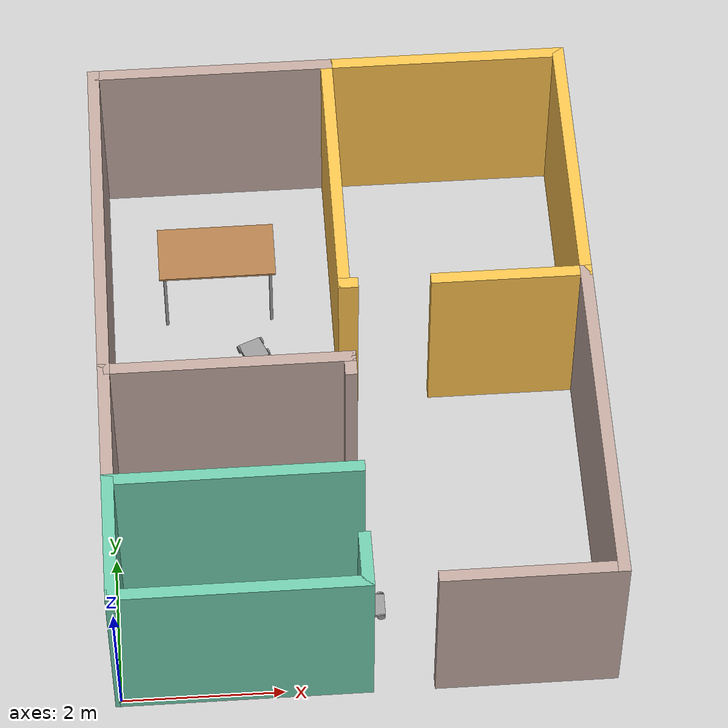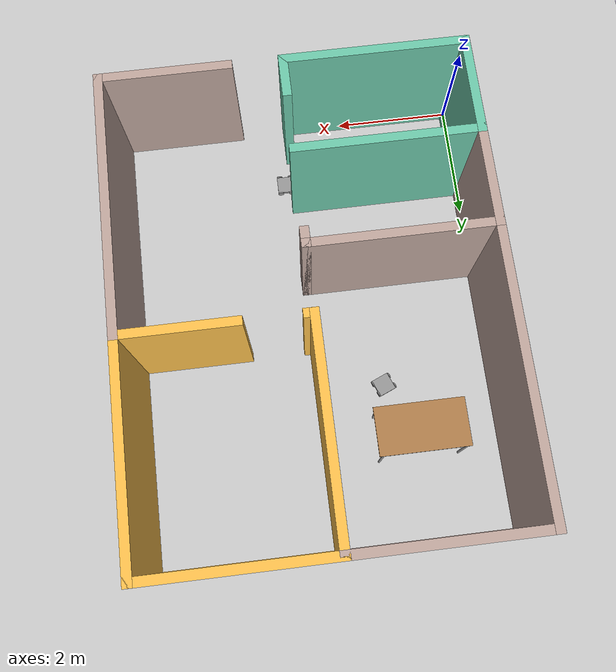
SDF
<sdf version="1.6">
 <world name="default">
  <plugin name="welcome_message" filename="libwelcome_message.so"/>
  <light name="sun" type="directional">
   <pose>0 0 10 0 -0 0</pose>
   <diffuse>0.8 0.8 0.8 1</diffuse>
   <specular>0.2 0.2 0.2 1</specular>
   <attenuation>
    <range>1000</range>
    <constant>0.9</constant>
    <linear>0.01</linear>
    <quadratic>0.001</quadratic>
   </attenuation>
   <direction>-0.5 0.1 -0.9</direction>
  </light>
  <model name="ground_plane">
   <static>1</static>
   <link name="link">
    <collision name="collision">
     <geometry><plane><normal>0 0 1</normal><size>100 100</size></plane></geometry>
     <surface>
      <contact><collide_bitmask>65535</collide_bitmask></contact>
      <friction><ode><mu>100</mu><mu2>50</mu2></ode></friction>
     </surface>
    </collision>
    <visual name="visual">
     <cast_shadows>0</cast_shadows>
     <geometry><plane><normal>0 0 1</normal><size>100 100</size></plane></geometry>
     <material>
      <script><uri>file://media/materials/scripts/gazebo.material</uri><name>Gazebo/Grey</name></script>
     </material>
    </visual>
   </link>
  </model>
  <gravity>0 0 -9.8</gravity>
  <magnetic_field>6e-06 2.3e-05 -4.2e-05</magnetic_field>
  <atmosphere type="adiabatic"/>
  <physics name="default_physics" default="0" type="ode">
   <max_step_size>0.001</max_step_size>
   <real_time_factor>1</real_time_factor>
   <real_time_update_rate>1000</real_time_update_rate>
  </physics>
  <scene><ambient>0.4 0.4 0.4 1</ambient><background>0.7 0.7 0.7 1</background><shadows>1</shadows></scene>
  <spherical_coordinates>
   <surface_model>EARTH_WGS84</surface_model>
   <latitude_deg>0</latitude_deg>
   <longitude_deg>0</longitude_deg>
   <elevation>0</elevation>
   <heading_deg>0</heading_deg>
  </spherical_coordinates>
  <model name="Building">
   <pose>3 3.9 0 0 -0 0</pose>
   <link name="Wall_0">
    <collision name="Wall_0_Collision">
     <geometry><box><size>3.15 0.15 2.5</size></box></geometry>
     <pose>0 0 1.25 0 -0 0</pose>
    </collision>
    <visual name="Wall_0_Visual">
     <pose>0 0 1.25 0 -0 0</pose>
     <geometry><box><size>3.15 0.15 2.5</size></box></geometry>
     <material>
      <script><uri>file://media/materials/scripts/gazebo.material</uri><name>Gazebo/Grey</name></script>
      <ambient>0.435294 0.796078 0.67451 1</ambient>
     </material>
     <meta><layer>0</layer></meta>
    </visual>
    <pose>-1.5 -3.9 0 0 -0 0</pose>
   </link>
   <link name="Wall_11">
    <collision name="Wall_11_Collision">
     <geometry><box><size>4.75 0.15 2.5</size></box></geometry>
     <pose>0 0 1.25 0 -0 0</pose>
    </collision>
    <visual name="Wall_11_Visual">
     <pose>0 0 1.25 0 -0 0</pose>
     <geometry><box><size>4.75 0.15 2.5</size></box></geometry>
     <material>
      <script><uri>file://media/materials/scripts/gazebo.material</uri><name>Gazebo/Grey</name></script>
      <ambient>0.760784 0.662745 0.627451 1</ambient>
     </material>
     <meta><layer>0</layer></meta>
    </visual>
    <pose>-3 1.6 0 0 -0 1.5708</pose>
   </link>
   <link name="Wall_13">
    <collision name="Wall_13_Collision">
     <geometry><box><size>3.15 0.15 2.5</size></box></geometry>
     <pose>0 0 1.25 0 -0 0</pose>
    </collision>
    <visual name="Wall_13_Visual">
     <pose>0 0 1.25 0 -0 0</pose>
     <geometry><box><size>3.15 0.15 2.5</size></box></geometry>
     <material>
      <script><uri>file://media/materials/scripts/gazebo.material</uri><name>Gazebo/Grey</name></script>
      <ambient>0.760784 0.662745 0.627451 1</ambient>
     </material>
     <meta><layer>0</layer></meta>
    </visual>
    <pose>-1.5 3.9 0 0 -0 0</pose>
   </link>
   <link name="Wall_15">
    <collision name="Wall_15_Collision">
     <geometry><box><size>3.65 0.15 2.5</size></box></geometry>
     <pose>0 0 1.25 0 -0 0</pose>
    </collision>
    <visual name="Wall_15_Visual">
     <pose>0 0 1.25 0 -0 0</pose>
     <geometry><box><size>3.65 0.15 2.5</size></box></geometry>
     <material>
      <script><uri>file://media/materials/scripts/gazebo.material</uri><name>Gazebo/Grey</name></script>
      <ambient>1 0.764706 0.305882 1</ambient>
     </material>
     <meta><layer>0</layer></meta>
    </visual>
    <pose>0 2.15 0 0 -0 -1.5708</pose>
   </link>
   <link name="Wall_17">
    <collision name="Wall_17_Collision">
     <geometry><box><size>3.15 0.15 2.5</size></box></geometry>
     <pose>0 0 1.25 0 -0 0</pose>
    </collision>
    <visual name="Wall_17_Visual">
     <pose>0 0 1.25 0 -0 0</pose>
     <geometry><box><size>3.15 0.15 2.5</size></box></geometry>
     <material>
      <script><uri>file://media/materials/scripts/gazebo.material</uri><name>Gazebo/Grey</name></script>
      <ambient>1 0.764706 0.305882 1</ambient>
     </material>
     <meta><layer>0</layer></meta>
    </visual>
    <pose>1.5 3.9 0 0 -0 0</pose>
   </link>
   <link name="Wall_19">
    <collision name="Wall_19_Collision">
     <geometry><box><size>3.65 0.15 2.5</size></box></geometry>
     <pose>0 0 1.25 0 -0 0</pose>
    </collision>
    <visual name="Wall_19_Visual">
     <pose>0 0 1.25 0 -0 0</pose>
     <geometry><box><size>3.65 0.15 2.5</size></box></geometry>
     <material>
      <script><uri>file://media/materials/scripts/gazebo.material</uri><name>Gazebo/Grey</name></script>
      <ambient>1 0.764706 0.305882 1</ambient>
     </material>
     <meta><layer>0</layer></meta>
    </visual>
    <pose>3 2.15 0 0 -0 -1.5708</pose>
   </link>
   <link name="Wall_2">
    <collision name="Wall_2_Collision">
     <geometry><box><size>1.75 0.15 2.5</size></box></geometry>
     <pose>0 0 1.25 0 -0 0</pose>
    </collision>
    <visual name="Wall_2_Visual">
     <pose>0 0 1.25 0 -0 0</pose>
     <geometry><box><size>1.75 0.15 2.5</size></box></geometry>
     <material>
      <script><uri>file://media/materials/scripts/gazebo.material</uri><name>Gazebo/Grey</name></script>
      <ambient>0.435294 0.796078 0.67451 1</ambient>
     </material>
     <meta><layer>0</layer></meta>
    </visual>
    <pose>-3 -3.1 0 0 -0 1.5708</pose>
   </link>
   <link name="Wall_23">
    <collision name="Wall_23_Collision">
     <geometry><box><size>2 0.15 2.5</size></box></geometry>
     <pose>0 0 1.25 0 -0 0</pose>
    </collision>
    <visual name="Wall_23_Visual">
     <pose>0 0 1.25 0 -0 0</pose>
     <geometry><box><size>2 0.15 2.5</size></box></geometry>
     <material>
      <script><uri>file://media/materials/scripts/gazebo.material</uri><name>Gazebo/Grey</name></script>
      <ambient>1 0.764706 0.305882 1</ambient>
     </material>
     <meta><layer>0</layer></meta>
    </visual>
    <pose>2.075 0.4 0 0 -0 3.14159</pose>
   </link>
   <link name="Wall_25">
    <collision name="Wall_25_Collision">
     <geometry><box><size>4.45 0.15 2.5</size></box></geometry>
     <pose>0 0 1.25 0 -0 0</pose>
    </collision>
    <visual name="Wall_25_Visual">
     <pose>0 0 1.25 0 -0 0</pose>
     <geometry><box><size>4.45 0.15 2.5</size></box></geometry>
     <material>
      <script><uri>file://media/materials/scripts/gazebo.material</uri><name>Gazebo/Grey</name></script>
      <ambient>0.760784 0.662745 0.627451 1</ambient>
     </material>
     <meta><layer>0</layer></meta>
    </visual>
    <pose>3 -1.75 0 0 -0 -1.5708</pose>
   </link>
   <link name="Wall_28">
    <collision name="Wall_28_Collision">
     <geometry><box><size>0.75 0.15 2.5</size></box></geometry>
     <pose>0 0 1.25 0 -0 0</pose>
    </collision>
    <visual name="Wall_28_Visual">
     <pose>0 0 1.25 0 -0 0</pose>
     <geometry><box><size>0.75 0.15 2.5</size></box></geometry>
     <material>
      <script><uri>file://media/materials/scripts/gazebo.material</uri><name>Gazebo/Grey</name></script>
      <ambient>0.435294 0.796078 0.67451 1</ambient>
     </material>
     <meta><layer>0</layer></meta>
    </visual>
    <pose>0 -3.6 0 0 -0 1.5708</pose>
   </link>
   <link name="Wall_30">
    <collision name="Wall_30_Collision">
     <geometry><box><size>2.25 0.15 2.5</size></box></geometry>
     <pose>0 0 1.25 0 -0 0</pose>
    </collision>
    <visual name="Wall_30_Visual">
     <pose>0 0 1.25 0 -0 0</pose>
     <geometry><box><size>2.25 0.15 2.5</size></box></geometry>
     <material>
      <script><uri>file://media/materials/scripts/gazebo.material</uri><name>Gazebo/Grey</name></script>
      <ambient>0.760784 0.662745 0.627451 1</ambient>
     </material>
     <meta><layer>0</layer></meta>
    </visual>
    <pose>1.95 -3.9 0 0 -0 3.14159</pose>
   </link>
   <link name="Wall_32">
    <collision name="Wall_32_Collision">
     <geometry><box><size>0.25 0.15 2.5</size></box></geometry>
     <pose>0 0 1.25 0 -0 0</pose>
    </collision>
    <visual name="Wall_32_Visual">
     <pose>0 0 1.25 0 -0 0</pose>
     <geometry><box><size>0.25 0.15 2.5</size></box></geometry>
     <material>
      <script><uri>file://media/materials/scripts/gazebo.material</uri><name>Gazebo/Grey</name></script>
      <ambient>1 0.764706 0.305882 1</ambient>
     </material>
     <meta><layer>0</layer></meta>
    </visual>
    <pose>0.05 0.4 0 0 -0 0</pose>
   </link>
   <link name="Wall_34">
    <collision name="Wall_34_Collision">
     <geometry><box><size>0.15 0.15 2.5</size></box></geometry>
     <pose>0 0 1.25 0 -0 0</pose>
    </collision>
    <visual name="Wall_34_Visual">
     <pose>0 0 1.25 0 -0 0</pose>
     <geometry><box><size>0.15 0.15 2.5</size></box></geometry>
     <material>
      <script><uri>file://media/materials/scripts/gazebo.material</uri><name>Gazebo/Grey</name></script>
      <ambient>0.760784 0.662745 0.627451 1</ambient>
     </material>
     <meta><layer>0</layer></meta>
    </visual>
    <pose>0 -0.7 0 0 -0 0</pose>
   </link>
   <link name="Wall_37">
    <collision name="Wall_37_Collision">
     <geometry><box><size>0.35 0.15 2.5</size></box></geometry>
     <pose>0 0 1.25 0 -0 0</pose>
    </collision>
    <visual name="Wall_37_Visual">
     <pose>0 0 1.25 0 -0 0</pose>
     <geometry><box><size>0.35 0.15 2.5</size></box></geometry>
     <material>
      <script><uri>file://media/materials/scripts/gazebo.material</uri><name>Gazebo/Grey</name></script>
      <ambient>0.760784 0.662745 0.627451 1</ambient>
     </material>
     <meta><layer>0</layer></meta>
    </visual>
    <pose>0 -0.8 0 0 -0 1.5708</pose>
   </link>
   <link name="Wall_4">
    <collision name="Wall_4_Collision">
     <geometry><box><size>3.15 0.15 2.5</size></box></geometry>
     <pose>0 0 1.25 0 -0 0</pose>
    </collision>
    <visual name="Wall_4_Visual">
     <pose>0 0 1.25 0 -0 0</pose>
     <geometry><box><size>3.15 0.15 2.5</size></box></geometry>
     <material>
      <script><uri>file://media/materials/scripts/gazebo.material</uri><name>Gazebo/Grey</name></script>
      <ambient>0.435294 0.796078 0.67451 1</ambient>
     </material>
     <meta><layer>0</layer></meta>
    </visual>
    <pose>-1.5 -2.3 0 0 -0 0</pose>
   </link>
   <link name="Wall_6">
    <collision name="Wall_6_Collision">
     <geometry><box><size>1.75 0.15 2.5</size></box></geometry>
     <pose>0 0 1.25 0 -0 0</pose>
    </collision>
    <visual name="Wall_6_Visual">
     <pose>0 0 1.25 0 -0 0</pose>
     <geometry><box><size>1.75 0.15 2.5</size></box></geometry>
     <material>
      <script><uri>file://media/materials/scripts/gazebo.material</uri><name>Gazebo/Grey</name></script>
      <ambient>0.760784 0.662745 0.627451 1</ambient>
     </material>
     <meta><layer>0</layer></meta>
    </visual>
    <pose>-3 -1.5 0 0 -0 1.5708</pose>
   </link>
   <link name="Wall_8">
    <collision name="Wall_8_Collision">
     <geometry><box><size>3.15 0.15 2.5</size></box></geometry>
     <pose>0 0 1.25 0 -0 0</pose>
    </collision>
    <visual name="Wall_8_Visual">
     <pose>0 0 1.25 0 -0 0</pose>
     <geometry><box><size>3.15 0.15 2.5</size></box></geometry>
     <material>
      <script><uri>file://media/materials/scripts/gazebo.material</uri><name>Gazebo/Grey</name></script>
      <ambient>0.760784 0.662745 0.627451 1</ambient>
     </material>
     <meta><layer>0</layer></meta>
    </visual>
    <pose>-1.5 -0.7 0 0 -0 0</pose>
   </link>
   <static>1</static>
  </model>
  <model name="table">
   <static>1</static>
   <link name="link">
    <collision name="surface">
     <pose>0 0 1 0 -0 0</pose>
     <geometry><box><size>1.5 0.8 0.03</size></box></geometry>
     <surface><friction><ode><mu>0.6</mu><mu2>0.6</mu2></ode></friction></surface>
    </collision>
    <visual name="visual1">
     <pose>0 0 1 0 -0 0</pose>
     <geometry><box><size>1.5 0.8 0.03</size></box></geometry>
     <material>
      <script><uri>file://media/materials/scripts/gazebo.material</uri><name>Gazebo/Wood</name></script>
     </material>
    </visual>
    <collision name="front_left_leg">
     <pose>0.68 0.38 0.5 0 -0 0</pose>
     <geometry><cylinder><radius>0.02</radius><length>1</length></cylinder></geometry>
    </collision>
    <visual name="front_left_leg">
     <pose>0.68 0.38 0.5 0 -0 0</pose>
     <geometry><cylinder><radius>0.02</radius><length>1</length></cylinder></geometry>
     <material>
      <script><uri>file://media/materials/scripts/gazebo.material</uri><name>Gazebo/Grey</name></script>
     </material>
    </visual>
    <collision name="front_right_leg">
     <pose>0.68 -0.38 0.5 0 -0 0</pose>
     <geometry><cylinder><radius>0.02</radius><length>1</length></cylinder></geometry>
    </collision>
    <visual name="front_right_leg">
     <pose>0.68 -0.38 0.5 0 -0 0</pose>
     <geometry><cylinder><radius>0.02</radius><length>1</length></cylinder></geometry>
     <material>
      <script><uri>file://media/materials/scripts/gazebo.material</uri><name>Gazebo/Grey</name></script>
     </material>
    </visual>
    <collision name="back_right_leg">
     <pose>-0.68 -0.38 0.5 0 -0 0</pose>
     <geometry><cylinder><radius>0.02</radius><length>1</length></cylinder></geometry>
    </collision>
    <visual name="back_right_leg">
     <pose>-0.68 -0.38 0.5 0 -0 0</pose>
     <geometry><cylinder><radius>0.02</radius><length>1</length></cylinder></geometry>
     <material>
      <script><uri>file://media/materials/scripts/gazebo.material</uri><name>Gazebo/Grey</name></script>
     </material>
    </visual>
    <collision name="back_left_leg">
     <pose>-0.68 0.38 0.5 0 -0 0</pose>
     <geometry><cylinder><radius>0.02</radius><length>1</length></cylinder></geometry>
    </collision>
    <visual name="back_left_leg">
     <pose>-0.68 0.38 0.5 0 -0 0</pose>
     <geometry><cylinder><radius>0.02</radius><length>1</length></cylinder></geometry>
     <material>
      <script><uri>file://media/materials/scripts/gazebo.material</uri><name>Gazebo/Grey</name></script>
     </material>
    </visual>
   </link>
   <pose>1.4556 5.98783 0 0 -0 0</pose>
  </model>
  <model name="HumanoidRobot_0">
   <link name="link_0">
    <inertial>
     <mass>1</mass>
     <inertia>
      <ixx>0.166667</ixx>
      <ixy>0</ixy>
      <ixz>0</ixz>
      <iyy>0.166667</iyy>
      <iyz>0</iyz>
      <izz>0.166667</izz>
     </inertia>
    </inertial>
    <visual name="visual">
     <geometry><box><size>0.3 0.3 0.05</size></box></geometry>
     <material>
      <lighting>1</lighting>
      <script><uri>file://media/materials/scripts/gazebo.material</uri><name>Gazebo/Grey</name></script>
      <shader type="pixel"><normal_map>__default__</normal_map></shader>
      <ambient>0.3 0.3 0.3 1</ambient>
      <diffuse>0.7 0.7 0.7 1</diffuse>
      <specular>0.01 0.01 0.01 1</specular>
      <emissive>0 0 0 1</emissive>
     </material>
    </visual>
    <collision name="collision">
     <geometry><box><size>0.3 0.3 0.05</size></box></geometry>
     <surface>
      <friction>
       <ode><mu>1</mu><mu2>1</mu2><fdir1>0 0 0</fdir1><slip1>0</slip1><slip2>0</slip2></ode>
       <torsional>
        <coefficient>1</coefficient>
        <patch_radius>0</patch_radius>
        <surface_radius>0</surface_radius>
        <use_patch_radius>1</use_patch_radius>
        <ode><slip>0</slip></ode>
       </torsional>
      </friction>
      <bounce><restitution_coefficient>0</restitution_coefficient><threshold>1e+06</threshold></bounce>
      <contact>
       <collide_without_contact>0</collide_without_contact>
       <collide_without_contact_bitmask>1</collide_without_contact_bitmask>
       <collide_bitmask>1</collide_bitmask>
       <ode>
        <soft_cfm>0</soft_cfm>
        <soft_erp>0.2</soft_erp>
        <kp>1e+13</kp>
        <kd>1</kd>
        <max_vel>0.01</max_vel>
        <min_depth>0</min_depth>
       </ode>
       <bullet>
        <split_impulse>1</split_impulse>
        <split_impulse_penetration_threshold>-0.01</split_impulse_penetration_threshold>
        <soft_cfm>0</soft_cfm>
        <soft_erp>0.2</soft_erp>
        <kp>1e+13</kp>
        <kd>1</kd>
       </bullet>
      </contact>
     </surface>
    </collision>
   </link>
   <link name="link_1_clone_clone_clone">
    <inertial>
     <mass>1</mass>
     <inertia><ixx>0.145833</ixx><ixy>0</ixy><ixz>0</ixz><iyy>0.145833</iyy><iyz>0</iyz><izz>0.125</izz></inertia>
    </inertial>
    <pose>-0.1 -0.160005 0 1.5707 -0 0</pose>
    <visual name="visual">
     <geometry><cylinder><radius>0.05</radius><length>0.02</length></cylinder></geometry>
     <material>
      <lighting>1</lighting>
      <script><uri>file://media/materials/scripts/gazebo.material</uri><name>Gazebo/Grey</name></script>
      <shader type="pixel"><normal_map>__default__</normal_map></shader>
      <ambient>0.3 0.3 0.3 1</ambient>
      <diffuse>0.7 0.7 0.7 1</diffuse>
      <specular>0.01 0.01 0.01 1</specular>
      <emissive>0 0 0 1</emissive>
     </material>
    </visual>
    <collision name="collision">
     <geometry><cylinder><radius>0.05</radius><length>0.02</length></cylinder></geometry>
     <surface>
      <friction>
       <ode><mu>1</mu><mu2>1</mu2><fdir1>0 0 0</fdir1><slip1>0</slip1><slip2>0</slip2></ode>
       <torsional>
        <coefficient>1</coefficient>
        <patch_radius>0</patch_radius>
        <surface_radius>0</surface_radius>
        <use_patch_radius>1</use_patch_radius>
        <ode><slip>0</slip></ode>
       </torsional>
      </friction>
      <bounce><restitution_coefficient>0</restitution_coefficient><threshold>1e+06</threshold></bounce>
      <contact>
       <collide_without_contact>0</collide_without_contact>
       <collide_without_contact_bitmask>1</collide_without_contact_bitmask>
       <collide_bitmask>1</collide_bitmask>
       <ode>
        <soft_cfm>0</soft_cfm>
        <soft_erp>0.2</soft_erp>
        <kp>1e+13</kp>
        <kd>1</kd>
        <max_vel>0.01</max_vel>
        <min_depth>0</min_depth>
       </ode>
       <bullet>
        <split_impulse>1</split_impulse>
        <split_impulse_penetration_threshold>-0.01</split_impulse_penetration_threshold>
        <soft_cfm>0</soft_cfm>
        <soft_erp>0.2</soft_erp>
        <kp>1e+13</kp>
        <kd>1</kd>
       </bullet>
      </contact>
     </surface>
    </collision>
   </link>
   <link name="link_1_clone_clone_clone_clone">
    <inertial>
     <mass>1</mass>
     <inertia><ixx>0.145833</ixx><ixy>0</ixy><ixz>0</ixz><iyy>0.145833</iyy><iyz>0</iyz><izz>0.125</izz></inertia>
    </inertial>
    <pose>0.1 -0.160005 0 1.5707 -0 0</pose>
    <visual name="visual">
     <geometry><cylinder><radius>0.05</radius><length>0.02</length></cylinder></geometry>
     <material>
      <lighting>1</lighting>
      <script><uri>file://media/materials/scripts/gazebo.material</uri><name>Gazebo/Grey</name></script>
      <shader type="pixel"><normal_map>__default__</normal_map></shader>
      <ambient>0.3 0.3 0.3 1</ambient>
      <diffuse>0.7 0.7 0.7 1</diffuse>
      <specular>0.01 0.01 0.01 1</specular>
      <emissive>0 0 0 1</emissive>
     </material>
    </visual>
    <collision name="collision">
     <geometry><cylinder><radius>0.05</radius><length>0.02</length></cylinder></geometry>
     <surface>
      <friction>
       <ode><mu>1</mu><mu2>1</mu2><fdir1>0 0 0</fdir1><slip1>0</slip1><slip2>0</slip2></ode>
       <torsional>
        <coefficient>1</coefficient>
        <patch_radius>0</patch_radius>
        <surface_radius>0</surface_radius>
        <use_patch_radius>1</use_patch_radius>
        <ode><slip>0</slip></ode>
       </torsional>
      </friction>
      <bounce><restitution_coefficient>0</restitution_coefficient><threshold>1e+06</threshold></bounce>
      <contact>
       <collide_without_contact>0</collide_without_contact>
       <collide_without_contact_bitmask>1</collide_without_contact_bitmask>
       <collide_bitmask>1</collide_bitmask>
       <ode>
        <soft_cfm>0</soft_cfm>
        <soft_erp>0.2</soft_erp>
        <kp>1e+13</kp>
        <kd>1</kd>
        <max_vel>0.01</max_vel>
        <min_depth>0</min_depth>
       </ode>
       <bullet>
        <split_impulse>1</split_impulse>
        <split_impulse_penetration_threshold>-0.01</split_impulse_penetration_threshold>
        <soft_cfm>0</soft_cfm>
        <soft_erp>0.2</soft_erp>
        <kp>1e+13</kp>
        <kd>1</kd>
       </bullet>
      </contact>
     </surface>
    </collision>
   </link>
   <link name="link_1_clone_clone_clone_clone_0">
    <inertial>
     <mass>1</mass>
     <inertia><ixx>0.145833</ixx><ixy>0</ixy><ixz>0</ixz><iyy>0.145833</iyy><iyz>0</iyz><izz>0.125</izz></inertia>
    </inertial>
    <pose>-0.1 0.160005 0 1.5707 -0 0</pose>
    <visual name="visual">
     <geometry><cylinder><radius>0.05</radius><length>0.02</length></cylinder></geometry>
     <material>
      <lighting>1</lighting>
      <script><uri>file://media/materials/scripts/gazebo.material</uri><name>Gazebo/Grey</name></script>
      <shader type="pixel"><normal_map>__default__</normal_map></shader>
      <ambient>0.3 0.3 0.3 1</ambient>
      <diffuse>0.7 0.7 0.7 1</diffuse>
      <specular>0.01 0.01 0.01 1</specular>
      <emissive>0 0 0 1</emissive>
     </material>
    </visual>
    <collision name="collision">
     <geometry><cylinder><radius>0.05</radius><length>0.02</length></cylinder></geometry>
     <surface>
      <friction>
       <ode><mu>1</mu><mu2>1</mu2><fdir1>0 0 0</fdir1><slip1>0</slip1><slip2>0</slip2></ode>
       <torsional>
        <coefficient>1</coefficient>
        <patch_radius>0</patch_radius>
        <surface_radius>0</surface_radius>
        <use_patch_radius>1</use_patch_radius>
        <ode><slip>0</slip></ode>
       </torsional>
      </friction>
      <bounce><restitution_coefficient>0</restitution_coefficient><threshold>1e+06</threshold></bounce>
      <contact>
       <collide_without_contact>0</collide_without_contact>
       <collide_without_contact_bitmask>1</collide_without_contact_bitmask>
       <collide_bitmask>1</collide_bitmask>
       <ode>
        <soft_cfm>0</soft_cfm>
        <soft_erp>0.2</soft_erp>
        <kp>1e+13</kp>
        <kd>1</kd>
        <max_vel>0.01</max_vel>
        <min_depth>0</min_depth>
       </ode>
       <bullet>
        <split_impulse>1</split_impulse>
        <split_impulse_penetration_threshold>-0.01</split_impulse_penetration_threshold>
        <soft_cfm>0</soft_cfm>
        <soft_erp>0.2</soft_erp>
        <kp>1e+13</kp>
        <kd>1</kd>
       </bullet>
      </contact>
     </surface>
    </collision>
   </link>
   <link name="link_1_clone_clone_clone_clone_1">
    <inertial>
     <mass>1</mass>
     <inertia><ixx>0.145833</ixx><ixy>0</ixy><ixz>0</ixz><iyy>0.145833</iyy><iyz>0</iyz><izz>0.125</izz></inertia>
    </inertial>
    <pose>0.1 0.160005 0 1.5707 -0 0</pose>
    <visual name="visual">
     <geometry><cylinder><radius>0.05</radius><length>0.02</length></cylinder></geometry>
     <material>
      <lighting>1</lighting>
      <script><uri>file://media/materials/scripts/gazebo.material</uri><name>Gazebo/Grey</name></script>
      <shader type="pixel"><normal_map>__default__</normal_map></shader>
      <ambient>0.3 0.3 0.3 1</ambient>
      <diffuse>0.7 0.7 0.7 1</diffuse>
      <specular>0.01 0.01 0.01 1</specular>
      <emissive>0 0 0 1</emissive>
     </material>
    </visual>
    <collision name="collision">
     <geometry><cylinder><radius>0.05</radius><length>0.02</length></cylinder></geometry>
     <surface>
      <friction>
       <ode><mu>1</mu><mu2>1</mu2><fdir1>0 0 0</fdir1><slip1>0</slip1><slip2>0</slip2></ode>
       <torsional>
        <coefficient>1</coefficient>
        <patch_radius>0</patch_radius>
        <surface_radius>0</surface_radius>
        <use_patch_radius>1</use_patch_radius>
        <ode><slip>0</slip></ode>
       </torsional>
      </friction>
      <bounce><restitution_coefficient>0</restitution_coefficient><threshold>1e+06</threshold></bounce>
      <contact>
       <collide_without_contact>0</collide_without_contact>
       <collide_without_contact_bitmask>1</collide_without_contact_bitmask>
       <collide_bitmask>1</collide_bitmask>
       <ode>
        <soft_cfm>0</soft_cfm>
        <soft_erp>0.2</soft_erp>
        <kp>1e+13</kp>
        <kd>1</kd>
        <max_vel>0.01</max_vel>
        <min_depth>0</min_depth>
       </ode>
       <bullet>
        <split_impulse>1</split_impulse>
        <split_impulse_penetration_threshold>-0.01</split_impulse_penetration_threshold>
        <soft_cfm>0</soft_cfm>
        <soft_erp>0.2</soft_erp>
        <kp>1e+13</kp>
        <kd>1</kd>
       </bullet>
      </contact>
     </surface>
    </collision>
   </link>
   <joint name="link_0_JOINT_3" type="revolute">
    <parent>link_0</parent>
    <child>link_1_clone_clone_clone</child>
    <axis>
     <xyz>1 0 0</xyz>
     <use_parent_model_frame>0</use_parent_model_frame>
     <limit>
      <lower>-1.79769e+308</lower>
      <upper>1.79769e+308</upper>
      <effort>-1</effort>
      <velocity>-1</velocity>
     </limit>
     <dynamics>
      <spring_reference>0</spring_reference>
      <spring_stiffness>0</spring_stiffness>
      <damping>0</damping>
     </dynamics>
    </axis>
    <physics>
     <ode><limit><cfm>0</cfm><erp>0.2</erp></limit><suspension><cfm>0</cfm><erp>0.2</erp></suspension></ode>
    </physics>
   </joint>
   <joint name="link_0_JOINT_4" type="revolute">
    <parent>link_0</parent>
    <child>link_1_clone_clone_clone_clone</child>
    <axis>
     <xyz>1 0 0</xyz>
     <use_parent_model_frame>0</use_parent_model_frame>
     <limit>
      <lower>-1.79769e+308</lower>
      <upper>1.79769e+308</upper>
      <effort>-1</effort>
      <velocity>-1</velocity>
     </limit>
     <dynamics>
      <spring_reference>0</spring_reference>
      <spring_stiffness>0</spring_stiffness>
      <damping>0</damping>
     </dynamics>
    </axis>
    <physics>
     <ode><limit><cfm>0</cfm><erp>0.2</erp></limit><suspension><cfm>0</cfm><erp>0.2</erp></suspension></ode>
    </physics>
   </joint>
   <joint name="link_0_JOINT_5" type="revolute">
    <parent>link_0</parent>
    <child>link_1_clone_clone_clone_clone_0</child>
    <axis>
     <xyz>1 0 0</xyz>
     <use_parent_model_frame>0</use_parent_model_frame>
     <limit>
      <lower>-1.79769e+308</lower>
      <upper>1.79769e+308</upper>
      <effort>-1</effort>
      <velocity>-1</velocity>
     </limit>
     <dynamics>
      <spring_reference>0</spring_reference>
      <spring_stiffness>0</spring_stiffness>
      <damping>0</damping>
     </dynamics>
    </axis>
    <physics>
     <ode><limit><cfm>0</cfm><erp>0.2</erp></limit><suspension><cfm>0</cfm><erp>0.2</erp></suspension></ode>
    </physics>
   </joint>
   <joint name="link_0_JOINT_6" type="revolute">
    <parent>link_0</parent>
    <child>link_1_clone_clone_clone_clone_1</child>
    <axis>
     <xyz>1 0 0</xyz>
     <use_parent_model_frame>0</use_parent_model_frame>
     <limit>
      <lower>-1.79769e+308</lower>
      <upper>1.79769e+308</upper>
      <effort>-1</effort>
      <velocity>-1</velocity>
     </limit>
     <dynamics>
      <spring_reference>0</spring_reference>
      <spring_stiffness>0</spring_stiffness>
      <damping>0</damping>
     </dynamics>
    </axis>
    <physics>
     <ode><limit><cfm>0</cfm><erp>0.2</erp></limit><suspension><cfm>0</cfm><erp>0.2</erp></suspension></ode>
    </physics>
   </joint>
   <static>0</static>
   <pose>1.87404 5.0701 0.05 0 0 -1.17002</pose>
  </model>
  <model name="HumanoidRobot_0_clone">
   <link name="link_0">
    <inertial>
     <mass>1</mass>
     <inertia>
      <ixx>0.166667</ixx>
      <ixy>0</ixy>
      <ixz>0</ixz>
      <iyy>0.166667</iyy>
      <iyz>0</iyz>
      <izz>0.166667</izz>
     </inertia>
    </inertial>
    <visual name="visual">
     <geometry><box><size>0.3 0.3 0.05</size></box></geometry>
     <material>
      <lighting>1</lighting>
      <script><uri>file://media/materials/scripts/gazebo.material</uri><name>Gazebo/Grey</name></script>
      <shader type="pixel"><normal_map>__default__</normal_map></shader>
      <ambient>0.3 0.3 0.3 1</ambient>
      <diffuse>0.7 0.7 0.7 1</diffuse>
      <specular>0.01 0.01 0.01 1</specular>
      <emissive>0 0 0 1</emissive>
     </material>
    </visual>
    <collision name="collision">
     <geometry><box><size>0.3 0.3 0.05</size></box></geometry>
     <surface>
      <friction>
       <ode><mu>1</mu><mu2>1</mu2><fdir1>0 0 0</fdir1><slip1>0</slip1><slip2>0</slip2></ode>
       <torsional>
        <coefficient>1</coefficient>
        <patch_radius>0</patch_radius>
        <surface_radius>0</surface_radius>
        <use_patch_radius>1</use_patch_radius>
        <ode><slip>0</slip></ode>
       </torsional>
      </friction>
      <bounce><restitution_coefficient>0</restitution_coefficient><threshold>1e+06</threshold></bounce>
      <contact>
       <collide_without_contact>0</collide_without_contact>
       <collide_without_contact_bitmask>1</collide_without_contact_bitmask>
       <collide_bitmask>1</collide_bitmask>
       <ode>
        <soft_cfm>0</soft_cfm>
        <soft_erp>0.2</soft_erp>
        <kp>1e+13</kp>
        <kd>1</kd>
        <max_vel>0.01</max_vel>
        <min_depth>0</min_depth>
       </ode>
       <bullet>
        <split_impulse>1</split_impulse>
        <split_impulse_penetration_threshold>-0.01</split_impulse_penetration_threshold>
        <soft_cfm>0</soft_cfm>
        <soft_erp>0.2</soft_erp>
        <kp>1e+13</kp>
        <kd>1</kd>
       </bullet>
      </contact>
     </surface>
    </collision>
   </link>
   <link name="link_1_clone_clone_clone">
    <inertial>
     <mass>1</mass>
     <inertia><ixx>0.145833</ixx><ixy>0</ixy><ixz>0</ixz><iyy>0.145833</iyy><iyz>0</iyz><izz>0.125</izz></inertia>
    </inertial>
    <pose>-0.1 -0.160005 0 1.5707 -0 0</pose>
    <visual name="visual">
     <geometry><cylinder><radius>0.05</radius><length>0.02</length></cylinder></geometry>
     <material>
      <lighting>1</lighting>
      <script><uri>file://media/materials/scripts/gazebo.material</uri><name>Gazebo/Grey</name></script>
      <shader type="pixel"><normal_map>__default__</normal_map></shader>
      <ambient>0.3 0.3 0.3 1</ambient>
      <diffuse>0.7 0.7 0.7 1</diffuse>
      <specular>0.01 0.01 0.01 1</specular>
      <emissive>0 0 0 1</emissive>
     </material>
    </visual>
    <collision name="collision">
     <geometry><cylinder><radius>0.05</radius><length>0.02</length></cylinder></geometry>
     <surface>
      <friction>
       <ode><mu>1</mu><mu2>1</mu2><fdir1>0 0 0</fdir1><slip1>0</slip1><slip2>0</slip2></ode>
       <torsional>
        <coefficient>1</coefficient>
        <patch_radius>0</patch_radius>
        <surface_radius>0</surface_radius>
        <use_patch_radius>1</use_patch_radius>
        <ode><slip>0</slip></ode>
       </torsional>
      </friction>
      <bounce><restitution_coefficient>0</restitution_coefficient><threshold>1e+06</threshold></bounce>
      <contact>
       <collide_without_contact>0</collide_without_contact>
       <collide_without_contact_bitmask>1</collide_without_contact_bitmask>
       <collide_bitmask>1</collide_bitmask>
       <ode>
        <soft_cfm>0</soft_cfm>
        <soft_erp>0.2</soft_erp>
        <kp>1e+13</kp>
        <kd>1</kd>
        <max_vel>0.01</max_vel>
        <min_depth>0</min_depth>
       </ode>
       <bullet>
        <split_impulse>1</split_impulse>
        <split_impulse_penetration_threshold>-0.01</split_impulse_penetration_threshold>
        <soft_cfm>0</soft_cfm>
        <soft_erp>0.2</soft_erp>
        <kp>1e+13</kp>
        <kd>1</kd>
       </bullet>
      </contact>
     </surface>
    </collision>
   </link>
   <link name="link_1_clone_clone_clone_clone">
    <inertial>
     <mass>1</mass>
     <inertia><ixx>0.145833</ixx><ixy>0</ixy><ixz>0</ixz><iyy>0.145833</iyy><iyz>0</iyz><izz>0.125</izz></inertia>
    </inertial>
    <pose>0.1 -0.160005 0 1.5707 -0 0</pose>
    <visual name="visual">
     <geometry><cylinder><radius>0.05</radius><length>0.02</length></cylinder></geometry>
     <material>
      <lighting>1</lighting>
      <script><uri>file://media/materials/scripts/gazebo.material</uri><name>Gazebo/Grey</name></script>
      <shader type="pixel"><normal_map>__default__</normal_map></shader>
      <ambient>0.3 0.3 0.3 1</ambient>
      <diffuse>0.7 0.7 0.7 1</diffuse>
      <specular>0.01 0.01 0.01 1</specular>
      <emissive>0 0 0 1</emissive>
     </material>
    </visual>
    <collision name="collision">
     <geometry><cylinder><radius>0.05</radius><length>0.02</length></cylinder></geometry>
     <surface>
      <friction>
       <ode><mu>1</mu><mu2>1</mu2><fdir1>0 0 0</fdir1><slip1>0</slip1><slip2>0</slip2></ode>
       <torsional>
        <coefficient>1</coefficient>
        <patch_radius>0</patch_radius>
        <surface_radius>0</surface_radius>
        <use_patch_radius>1</use_patch_radius>
        <ode><slip>0</slip></ode>
       </torsional>
      </friction>
      <bounce><restitution_coefficient>0</restitution_coefficient><threshold>1e+06</threshold></bounce>
      <contact>
       <collide_without_contact>0</collide_without_contact>
       <collide_without_contact_bitmask>1</collide_without_contact_bitmask>
       <collide_bitmask>1</collide_bitmask>
       <ode>
        <soft_cfm>0</soft_cfm>
        <soft_erp>0.2</soft_erp>
        <kp>1e+13</kp>
        <kd>1</kd>
        <max_vel>0.01</max_vel>
        <min_depth>0</min_depth>
       </ode>
       <bullet>
        <split_impulse>1</split_impulse>
        <split_impulse_penetration_threshold>-0.01</split_impulse_penetration_threshold>
        <soft_cfm>0</soft_cfm>
        <soft_erp>0.2</soft_erp>
        <kp>1e+13</kp>
        <kd>1</kd>
       </bullet>
      </contact>
     </surface>
    </collision>
   </link>
   <link name="link_1_clone_clone_clone_clone_0">
    <inertial>
     <mass>1</mass>
     <inertia><ixx>0.145833</ixx><ixy>0</ixy><ixz>0</ixz><iyy>0.145833</iyy><iyz>0</iyz><izz>0.125</izz></inertia>
    </inertial>
    <pose>-0.1 0.160005 0 1.5707 -0 0</pose>
    <visual name="visual">
     <geometry><cylinder><radius>0.05</radius><length>0.02</length></cylinder></geometry>
     <material>
      <lighting>1</lighting>
      <script><uri>file://media/materials/scripts/gazebo.material</uri><name>Gazebo/Grey</name></script>
      <shader type="pixel"><normal_map>__default__</normal_map></shader>
      <ambient>0.3 0.3 0.3 1</ambient>
      <diffuse>0.7 0.7 0.7 1</diffuse>
      <specular>0.01 0.01 0.01 1</specular>
      <emissive>0 0 0 1</emissive>
     </material>
    </visual>
    <collision name="collision">
     <geometry><cylinder><radius>0.05</radius><length>0.02</length></cylinder></geometry>
     <surface>
      <friction>
       <ode><mu>1</mu><mu2>1</mu2><fdir1>0 0 0</fdir1><slip1>0</slip1><slip2>0</slip2></ode>
       <torsional>
        <coefficient>1</coefficient>
        <patch_radius>0</patch_radius>
        <surface_radius>0</surface_radius>
        <use_patch_radius>1</use_patch_radius>
        <ode><slip>0</slip></ode>
       </torsional>
      </friction>
      <bounce><restitution_coefficient>0</restitution_coefficient><threshold>1e+06</threshold></bounce>
      <contact>
       <collide_without_contact>0</collide_without_contact>
       <collide_without_contact_bitmask>1</collide_without_contact_bitmask>
       <collide_bitmask>1</collide_bitmask>
       <ode>
        <soft_cfm>0</soft_cfm>
        <soft_erp>0.2</soft_erp>
        <kp>1e+13</kp>
        <kd>1</kd>
        <max_vel>0.01</max_vel>
        <min_depth>0</min_depth>
       </ode>
       <bullet>
        <split_impulse>1</split_impulse>
        <split_impulse_penetration_threshold>-0.01</split_impulse_penetration_threshold>
        <soft_cfm>0</soft_cfm>
        <soft_erp>0.2</soft_erp>
        <kp>1e+13</kp>
        <kd>1</kd>
       </bullet>
      </contact>
     </surface>
    </collision>
   </link>
   <link name="link_1_clone_clone_clone_clone_1">
    <inertial>
     <mass>1</mass>
     <inertia><ixx>0.145833</ixx><ixy>0</ixy><ixz>0</ixz><iyy>0.145833</iyy><iyz>0</iyz><izz>0.125</izz></inertia>
    </inertial>
    <pose>0.1 0.160005 0 1.5707 -0 0</pose>
    <visual name="visual">
     <geometry><cylinder><radius>0.05</radius><length>0.02</length></cylinder></geometry>
     <material>
      <lighting>1</lighting>
      <script><uri>file://media/materials/scripts/gazebo.material</uri><name>Gazebo/Grey</name></script>
      <shader type="pixel"><normal_map>__default__</normal_map></shader>
      <ambient>0.3 0.3 0.3 1</ambient>
      <diffuse>0.7 0.7 0.7 1</diffuse>
      <specular>0.01 0.01 0.01 1</specular>
      <emissive>0 0 0 1</emissive>
     </material>
    </visual>
    <collision name="collision">
     <geometry><cylinder><radius>0.05</radius><length>0.02</length></cylinder></geometry>
     <surface>
      <friction>
       <ode><mu>1</mu><mu2>1</mu2><fdir1>0 0 0</fdir1><slip1>0</slip1><slip2>0</slip2></ode>
       <torsional>
        <coefficient>1</coefficient>
        <patch_radius>0</patch_radius>
        <surface_radius>0</surface_radius>
        <use_patch_radius>1</use_patch_radius>
        <ode><slip>0</slip></ode>
       </torsional>
      </friction>
      <bounce><restitution_coefficient>0</restitution_coefficient><threshold>1e+06</threshold></bounce>
      <contact>
       <collide_without_contact>0</collide_without_contact>
       <collide_without_contact_bitmask>1</collide_without_contact_bitmask>
       <collide_bitmask>1</collide_bitmask>
       <ode>
        <soft_cfm>0</soft_cfm>
        <soft_erp>0.2</soft_erp>
        <kp>1e+13</kp>
        <kd>1</kd>
        <max_vel>0.01</max_vel>
        <min_depth>0</min_depth>
       </ode>
       <bullet>
        <split_impulse>1</split_impulse>
        <split_impulse_penetration_threshold>-0.01</split_impulse_penetration_threshold>
        <soft_cfm>0</soft_cfm>
        <soft_erp>0.2</soft_erp>
        <kp>1e+13</kp>
        <kd>1</kd>
       </bullet>
      </contact>
     </surface>
    </collision>
   </link>
   <joint name="link_0_JOINT_3" type="revolute">
    <parent>link_0</parent>
    <child>link_1_clone_clone_clone</child>
    <axis>
     <xyz>1 0 0</xyz>
     <use_parent_model_frame>0</use_parent_model_frame>
     <limit>
      <lower>-1.79769e+308</lower>
      <upper>1.79769e+308</upper>
      <effort>-1</effort>
      <velocity>-1</velocity>
     </limit>
     <dynamics>
      <spring_reference>0</spring_reference>
      <spring_stiffness>0</spring_stiffness>
      <damping>0</damping>
     </dynamics>
    </axis>
    <physics>
     <ode><limit><cfm>0</cfm><erp>0.2</erp></limit><suspension><cfm>0</cfm><erp>0.2</erp></suspension></ode>
    </physics>
   </joint>
   <joint name="link_0_JOINT_4" type="revolute">
    <parent>link_0</parent>
    <child>link_1_clone_clone_clone_clone</child>
    <axis>
     <xyz>1 0 0</xyz>
     <use_parent_model_frame>0</use_parent_model_frame>
     <limit>
      <lower>-1.79769e+308</lower>
      <upper>1.79769e+308</upper>
      <effort>-1</effort>
      <velocity>-1</velocity>
     </limit>
     <dynamics>
      <spring_reference>0</spring_reference>
      <spring_stiffness>0</spring_stiffness>
      <damping>0</damping>
     </dynamics>
    </axis>
    <physics>
     <ode><limit><cfm>0</cfm><erp>0.2</erp></limit><suspension><cfm>0</cfm><erp>0.2</erp></suspension></ode>
    </physics>
   </joint>
   <joint name="link_0_JOINT_5" type="revolute">
    <parent>link_0</parent>
    <child>link_1_clone_clone_clone_clone_0</child>
    <axis>
     <xyz>1 0 0</xyz>
     <use_parent_model_frame>0</use_parent_model_frame>
     <limit>
      <lower>-1.79769e+308</lower>
      <upper>1.79769e+308</upper>
      <effort>-1</effort>
      <velocity>-1</velocity>
     </limit>
     <dynamics>
      <spring_reference>0</spring_reference>
      <spring_stiffness>0</spring_stiffness>
      <damping>0</damping>
     </dynamics>
    </axis>
    <physics>
     <ode><limit><cfm>0</cfm><erp>0.2</erp></limit><suspension><cfm>0</cfm><erp>0.2</erp></suspension></ode>
    </physics>
   </joint>
   <joint name="link_0_JOINT_6" type="revolute">
    <parent>link_0</parent>
    <child>link_1_clone_clone_clone_clone_1</child>
    <axis>
     <xyz>1 0 0</xyz>
     <use_parent_model_frame>0</use_parent_model_frame>
     <limit>
      <lower>-1.79769e+308</lower>
      <upper>1.79769e+308</upper>
      <effort>-1</effort>
      <velocity>-1</velocity>
     </limit>
     <dynamics>
      <spring_reference>0</spring_reference>
      <spring_stiffness>0</spring_stiffness>
      <damping>0</damping>
     </dynamics>
    </axis>
    <physics>
     <ode><limit><cfm>0</cfm><erp>0.2</erp></limit><suspension><cfm>0</cfm><erp>0.2</erp></suspension></ode>
    </physics>
   </joint>
   <static>0</static>
   <pose>3.14434 1.1167 0.05 0 -0 0</pose>
  </model>
 </world>
</sdf>
